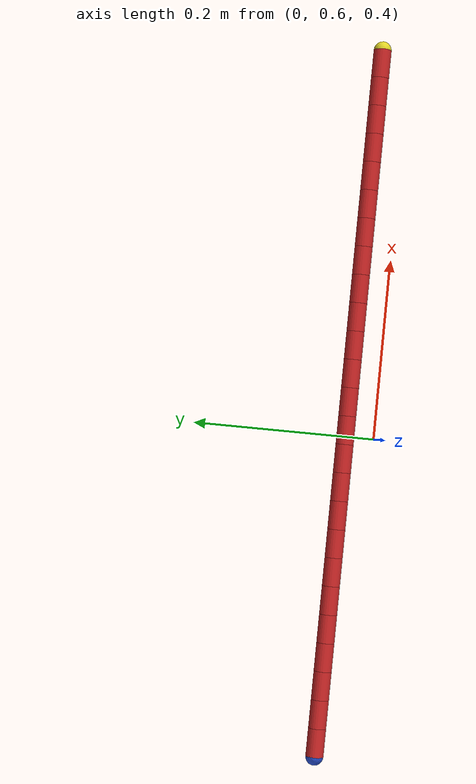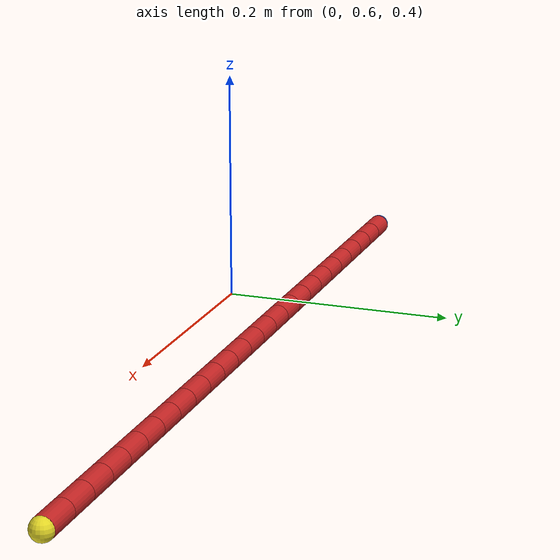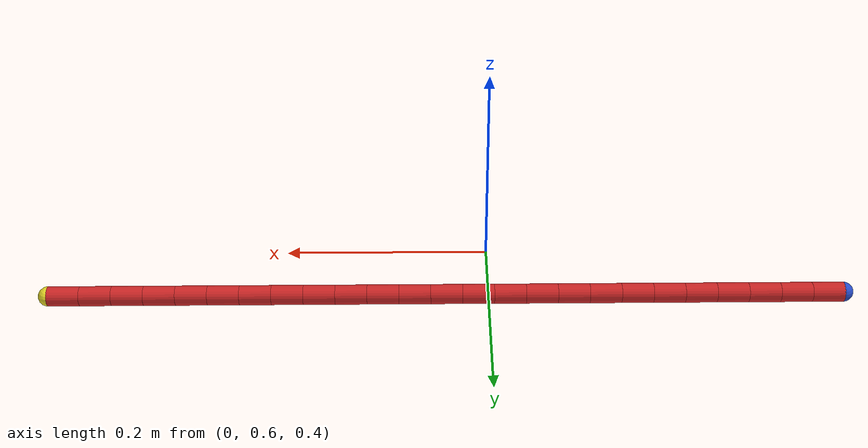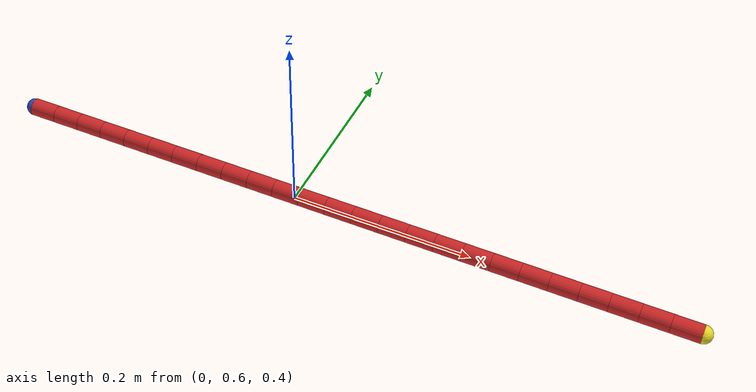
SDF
<sdf version="1.4">
 <world name="default">
  <scene>
   <grid>false</grid>
   <origin_visual>false</origin_visual>
   <sky><clouds><speed>12</speed></clouds></sky>
  </scene>
  <physics name="ode" type="ode">
   <max_step_size>0.01</max_step_size>
   <real_time_factor>1</real_time_factor>
   <real_time_update_rate>0</real_time_update_rate>
   <ode>
    <solver>
     <island_threads>2</island_threads>
     <type>quick</type>
     <iters>100</iters>
     <sor>1.0</sor>
     <use_dynamic_moi_rescaling>false</use_dynamic_moi_rescaling>
    </solver>
    <constraints><erp>0.2</erp></constraints>
   </ode>
  </physics>
  <plugin name="arm_gazebo_ros" filename="libarm_gazebo_ros_plugin.so"/>
  <plugin name="gazebo_ros_tf_plugin" filename="libgazebo_ros_tf_plugin.so"/>
  <plugin name="position_3d_plugin" filename="libposition_3d_plugin.so"/>
  <plugin name="collision_map_plugin" filename="libcollision_map_plugin.so"/>
  <include><uri>model://sun</uri></include>
  <include><uri>model://rope_3d_alt</uri><pose>-0.36 0.63 0.37 0 0 0</pose></include>
 </world>
</sdf>
